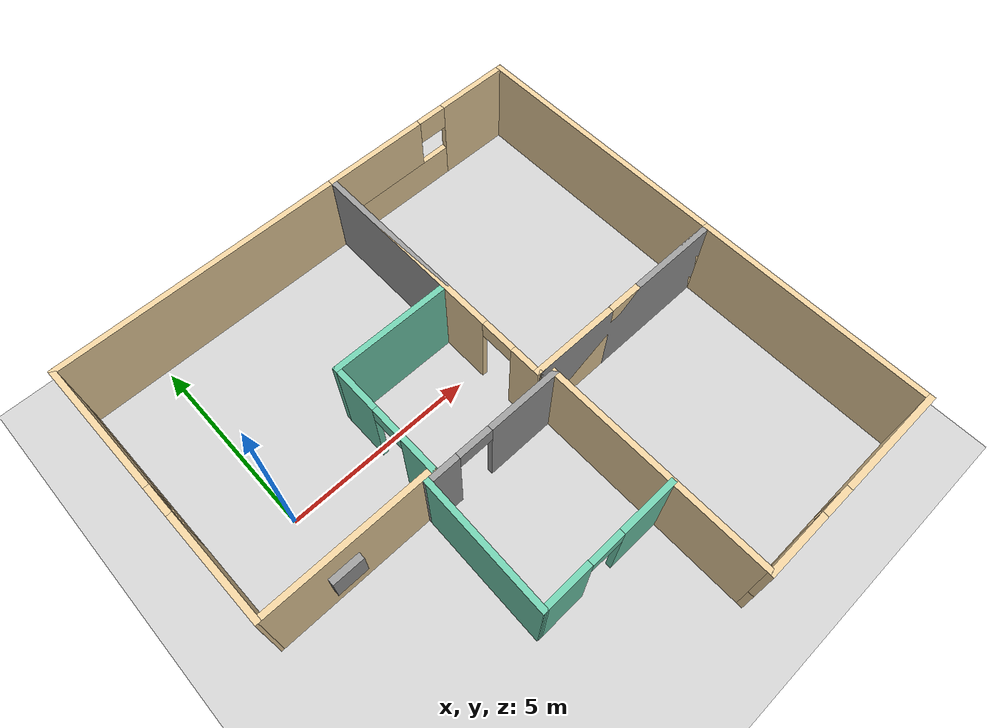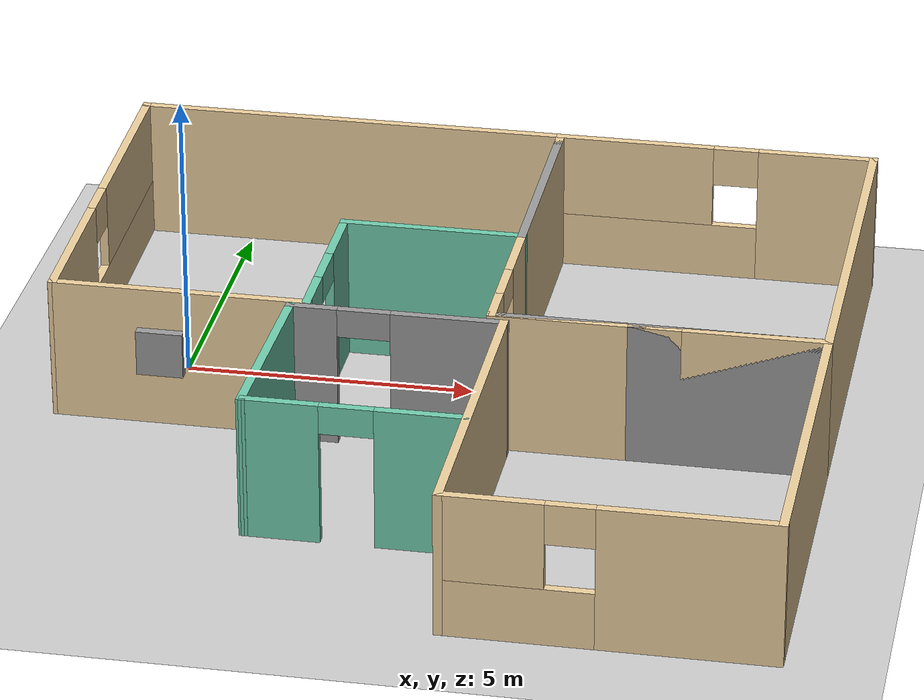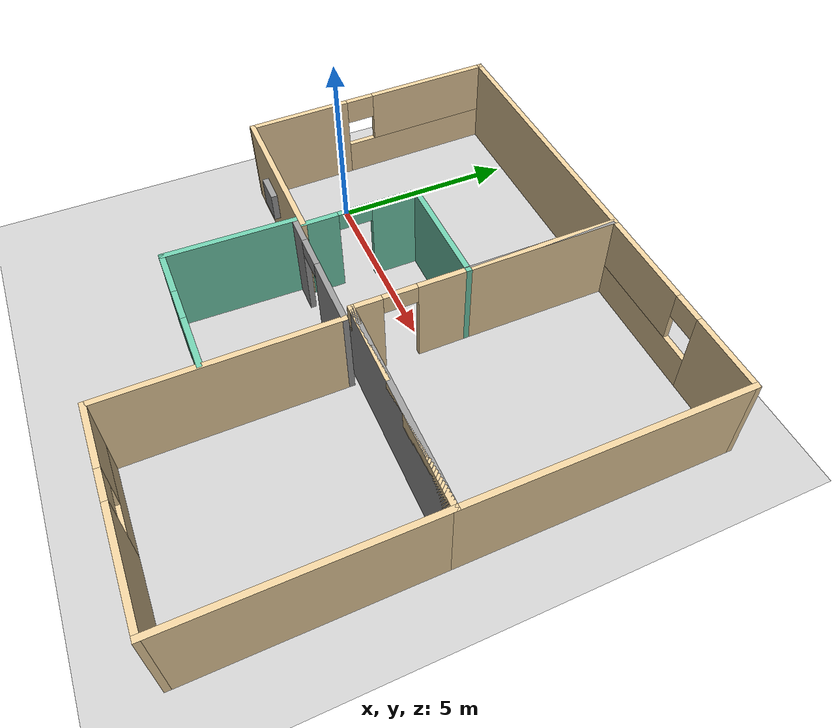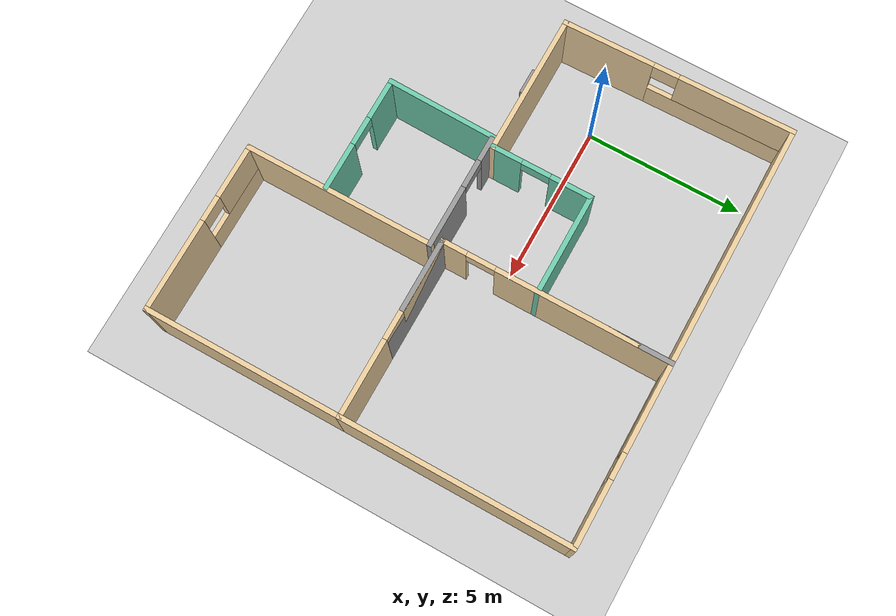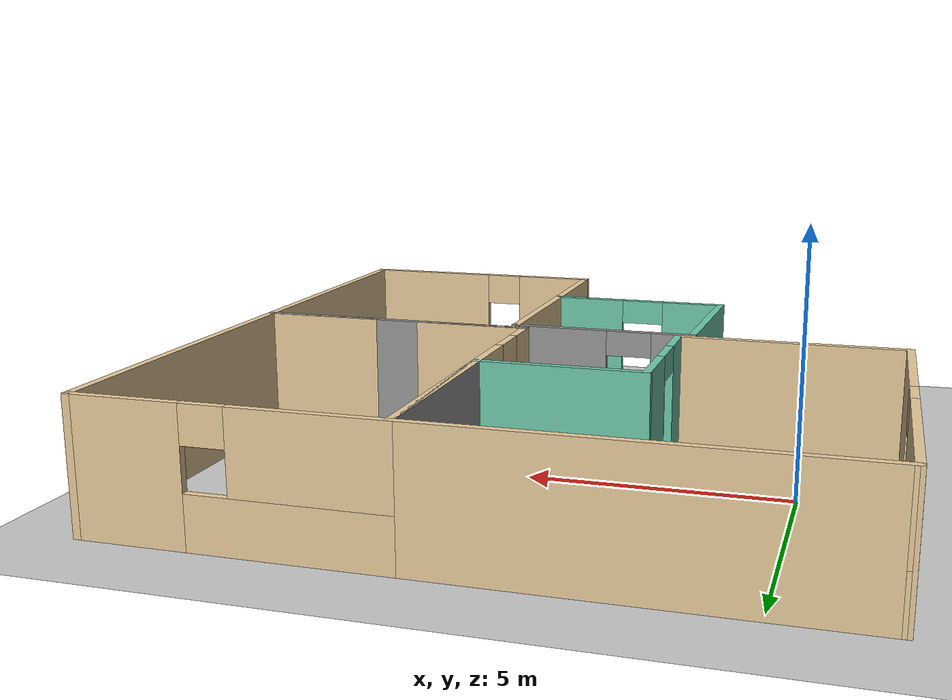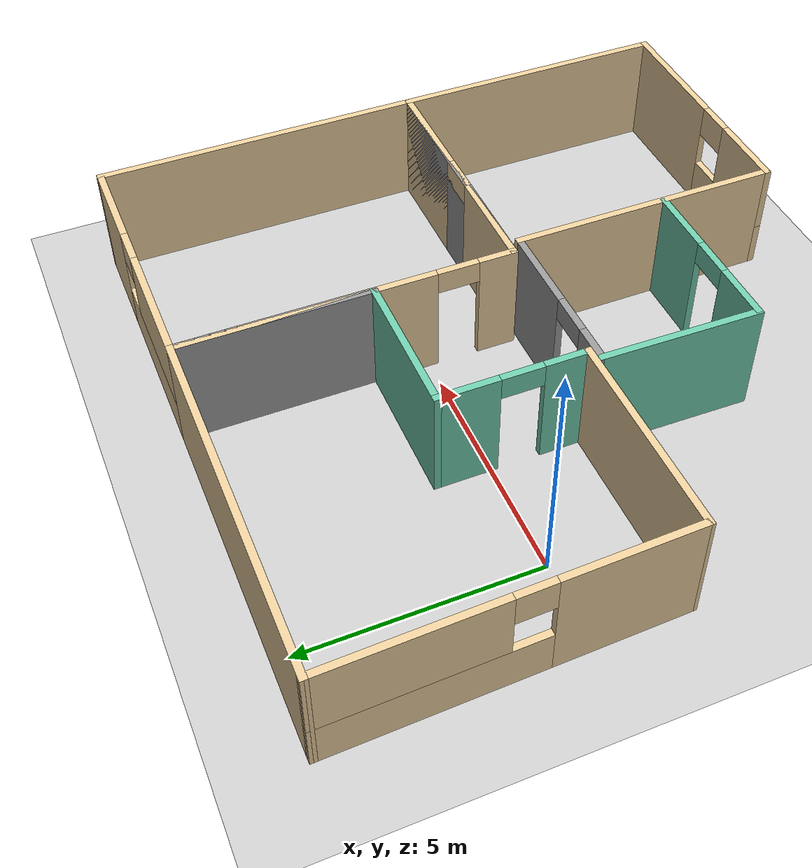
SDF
<sdf version="1.6">
 <world name="default">
  <light name="sun" type="directional">
   <pose>0 0 10 0 -0 0</pose>
   <diffuse>0.8 0.8 0.8 1</diffuse>
   <specular>0.2 0.2 0.2 1</specular>
   <attenuation>
    <range>1000</range>
    <constant>0.9</constant>
    <linear>0.01</linear>
    <quadratic>0.001</quadratic>
   </attenuation>
   <direction>-0.5 0.1 -0.9</direction>
  </light>
  <model name="ground_plane">
   <static>1</static>
   <link name="link">
    <collision name="collision">
     <geometry><plane><normal>0 0 1</normal><size>100 100</size></plane></geometry>
     <surface>
      <contact><collide_bitmask>65535</collide_bitmask></contact>
      <friction><ode><mu>100</mu><mu2>50</mu2></ode></friction>
     </surface>
    </collision>
    <visual name="visual">
     <cast_shadows>0</cast_shadows>
     <geometry><plane><normal>0 0 1</normal><size>100 100</size></plane></geometry>
     <material>
      <script><uri>file://media/materials/scripts/gazebo.material</uri><name>Gazebo/Grey</name></script>
     </material>
    </visual>
   </link>
  </model>
  <gravity>0 0 -9.8</gravity>
  <magnetic_field>6e-06 2.3e-05 -4.2e-05</magnetic_field>
  <atmosphere type="adiabatic"/>
  <physics name="default_physics" default="0" type="ode">
   <max_step_size>0.001</max_step_size>
   <real_time_factor>1</real_time_factor>
   <real_time_update_rate>1000</real_time_update_rate>
  </physics>
  <scene><ambient>0.4 0.4 0.4 1</ambient><background>0.7 0.7 0.7 1</background><shadows>1</shadows></scene>
  <audio><device>default</device></audio>
  <spherical_coordinates>
   <surface_model>EARTH_WGS84</surface_model>
   <latitude_deg>0</latitude_deg>
   <longitude_deg>0</longitude_deg>
   <elevation>0</elevation>
   <heading_deg>0</heading_deg>
  </spherical_coordinates>
  <model name="Test_bed">
   <pose>4.64877 -1.35982 0 0 -0 0</pose>
   <link name="Wall_0">
    <collision name="Wall_0_Collision">
     <geometry><box><size>7.75 0.15 2.5</size></box></geometry>
     <pose>0 0 1.25 0 -0 0</pose>
    </collision>
    <visual name="Wall_0_Visual">
     <pose>0 0 1.25 0 -0 0</pose>
     <geometry><box><size>7.75 0.15 2.5</size></box></geometry>
     <material>
      <script><uri>file://media/materials/scripts/gazebo.material</uri><name>Gazebo/Grey</name></script>
      <ambient>0.921569 0.807843 0.615686 1</ambient>
     </material>
     <meta><layer>0</layer></meta>
    </visual>
    <pose>-2.79923 6.59923 0 0 -0 0</pose>
   </link>
   <link name="Wall_1">
    <collision name="Wall_1_Collision">
     <geometry><box><size>4.25 0.15 2.5</size></box></geometry>
     <pose>0 0 1.25 0 -0 0</pose>
    </collision>
    <visual name="Wall_1_Visual">
     <pose>0 0 1.25 0 -0 0</pose>
     <geometry><box><size>4.25 0.15 2.5</size></box></geometry>
     <material>
      <script><uri>file://media/materials/scripts/gazebo.material</uri><name>Gazebo/Grey</name></script>
      <ambient>1 1 1 1</ambient>
     </material>
     <meta><layer>0</layer></meta>
    </visual>
    <pose>1.00077 4.54923 0 0 -0 -1.5708</pose>
   </link>
   <link name="Wall_10">
    <pose>3.80077 6.59923 0 0 -0 3.14159</pose>
    <visual name="Wall_10_Visual_0">
     <pose>-1.81772 0 1.25 0 -0 0</pose>
     <geometry><box><size>2.11457 0.15 2.5</size></box></geometry>
     <material>
      <script><uri>file://media/materials/scripts/gazebo.material</uri><name>Gazebo/Grey</name></script>
      <ambient>0.921569 0.807843 0.615686 1</ambient>
     </material>
     <meta><layer>0</layer></meta>
    </visual>
    <collision name="Wall_10_Collision_0">
     <geometry><box><size>2.11457 0.15 2.5</size></box></geometry>
     <pose>-1.81772 0 1.25 0 -0 0</pose>
    </collision>
    <visual name="Wall_10_Visual_1">
     <pose>1.05728 0 0.5 0 -0 0</pose>
     <geometry><box><size>3.63543 0.15 1</size></box></geometry>
     <material>
      <script><uri>file://media/materials/scripts/gazebo.material</uri><name>Gazebo/Grey</name></script>
      <ambient>0.921569 0.807843 0.615686 1</ambient>
     </material>
     <meta><layer>0</layer></meta>
    </visual>
    <collision name="Wall_10_Collision_1">
     <geometry><box><size>3.63543 0.15 1</size></box></geometry>
     <pose>1.05728 0 0.5 0 -0 0</pose>
    </collision>
    <visual name="Wall_10_Visual_2">
     <pose>1.45728 0 1.75 0 -0 0</pose>
     <geometry><box><size>2.83543 0.15 1.5</size></box></geometry>
     <material>
      <script><uri>file://media/materials/scripts/gazebo.material</uri><name>Gazebo/Grey</name></script>
      <ambient>0.921569 0.807843 0.615686 1</ambient>
     </material>
     <meta><layer>0</layer></meta>
    </visual>
    <collision name="Wall_10_Collision_2">
     <geometry><box><size>2.83543 0.15 1.5</size></box></geometry>
     <pose>1.45728 0 1.75 0 -0 0</pose>
    </collision>
    <visual name="Wall_10_Visual_3">
     <pose>-0.360434 0 2.15 0 -0 0</pose>
     <geometry><box><size>0.8 0.15 0.7</size></box></geometry>
     <material>
      <script><uri>file://media/materials/scripts/gazebo.material</uri><name>Gazebo/Grey</name></script>
      <ambient>0.921569 0.807843 0.615686 1</ambient>
     </material>
     <meta><layer>0</layer></meta>
    </visual>
    <collision name="Wall_10_Collision_3">
     <geometry><box><size>0.8 0.15 0.7</size></box></geometry>
     <pose>-0.360434 0 2.15 0 -0 0</pose>
    </collision>
   </link>
   <link name="Wall_12">
    <pose>3.80077 -0.500773 0 0 -0 0</pose>
    <visual name="Wall_12_Visual_0">
     <pose>-1.69683 0 1.25 0 -0 0</pose>
     <geometry><box><size>2.35634 0.15 2.5</size></box></geometry>
     <material>
      <script><uri>file://media/materials/scripts/gazebo.material</uri><name>Gazebo/Grey</name></script>
      <ambient>0.921569 0.807843 0.615686 1</ambient>
     </material>
     <meta><layer>0</layer></meta>
    </visual>
    <collision name="Wall_12_Collision_0">
     <geometry><box><size>2.35634 0.15 2.5</size></box></geometry>
     <pose>-1.69683 0 1.25 0 -0 0</pose>
    </collision>
    <visual name="Wall_12_Visual_1">
     <pose>1.62817 0 1.25 0 -0 0</pose>
     <geometry><box><size>2.49366 0.15 2.5</size></box></geometry>
     <material>
      <script><uri>file://media/materials/scripts/gazebo.material</uri><name>Gazebo/Grey</name></script>
      <ambient>0.921569 0.807843 0.615686 1</ambient>
     </material>
     <meta><layer>0</layer></meta>
    </visual>
    <collision name="Wall_12_Collision_1">
     <geometry><box><size>2.49366 0.15 2.5</size></box></geometry>
     <pose>1.62817 0 1.25 0 -0 0</pose>
    </collision>
    <visual name="Wall_12_Visual_2">
     <pose>-0.068656 0 2.25 0 -0 0</pose>
     <geometry><box><size>0.9 0.15 0.5</size></box></geometry>
     <material>
      <script><uri>file://media/materials/scripts/gazebo.material</uri><name>Gazebo/Grey</name></script>
      <ambient>0.921569 0.807843 0.615686 1</ambient>
     </material>
     <meta><layer>0</layer></meta>
    </visual>
    <collision name="Wall_12_Collision_2">
     <geometry><box><size>0.9 0.15 0.5</size></box></geometry>
     <pose>-0.068656 0 2.25 0 -0 0</pose>
    </collision>
   </link>
   <link name="Wall_13">
    <collision name="Wall_13_Collision">
     <geometry><box><size>6.25 0.15 2.5</size></box></geometry>
     <pose>0 0 1.25 0 -0 0</pose>
    </collision>
    <visual name="Wall_13_Visual">
     <pose>0 0 1.25 0 -0 0</pose>
     <geometry><box><size>6.25 0.15 2.5</size></box></geometry>
     <material>
      <script><uri>file://media/materials/scripts/gazebo.material</uri><name>Gazebo/Grey</name></script>
      <ambient>0.921569 0.807843 0.615686 1</ambient>
     </material>
     <meta><layer>0</layer></meta>
    </visual>
    <pose>6.60077 -3.55077 0 0 -0 -1.5708</pose>
   </link>
   <link name="Wall_14">
    <pose>3.92577 -6.60077 0 0 -0 3.14159</pose>
    <visual name="Wall_14_Visual_0">
     <pose>-1.27217 0 1.25 0 -0 0</pose>
     <geometry><box><size>2.95567 0.15 2.5</size></box></geometry>
     <material>
      <script><uri>file://media/materials/scripts/gazebo.material</uri><name>Gazebo/Grey</name></script>
      <ambient>0.921569 0.807843 0.615686 1</ambient>
     </material>
     <meta><layer>0</layer></meta>
    </visual>
    <collision name="Wall_14_Collision_0">
     <geometry><box><size>2.95567 0.15 2.5</size></box></geometry>
     <pose>-1.27217 0 1.25 0 -0 0</pose>
    </collision>
    <visual name="Wall_14_Visual_1">
     <pose>1.47783 0 0.5 0 -0 0</pose>
     <geometry><box><size>2.54433 0.15 1</size></box></geometry>
     <material>
      <script><uri>file://media/materials/scripts/gazebo.material</uri><name>Gazebo/Grey</name></script>
      <ambient>0.921569 0.807843 0.615686 1</ambient>
     </material>
     <meta><layer>0</layer></meta>
    </visual>
    <collision name="Wall_14_Collision_1">
     <geometry><box><size>2.54433 0.15 1</size></box></geometry>
     <pose>1.47783 0 0.5 0 -0 0</pose>
    </collision>
    <visual name="Wall_14_Visual_2">
     <pose>1.87783 0 1.75 0 -0 0</pose>
     <geometry><box><size>1.74433 0.15 1.5</size></box></geometry>
     <material>
      <script><uri>file://media/materials/scripts/gazebo.material</uri><name>Gazebo/Grey</name></script>
      <ambient>0.921569 0.807843 0.615686 1</ambient>
     </material>
     <meta><layer>0</layer></meta>
    </visual>
    <collision name="Wall_14_Collision_2">
     <geometry><box><size>1.74433 0.15 1.5</size></box></geometry>
     <pose>1.87783 0 1.75 0 -0 0</pose>
    </collision>
    <visual name="Wall_14_Visual_3">
     <pose>0.605666 0 2.15 0 -0 0</pose>
     <geometry><box><size>0.8 0.15 0.7</size></box></geometry>
     <material>
      <script><uri>file://media/materials/scripts/gazebo.material</uri><name>Gazebo/Grey</name></script>
      <ambient>0.921569 0.807843 0.615686 1</ambient>
     </material>
     <meta><layer>0</layer></meta>
    </visual>
    <collision name="Wall_14_Collision_3">
     <geometry><box><size>0.8 0.15 0.7</size></box></geometry>
     <pose>0.605666 0 2.15 0 -0 0</pose>
    </collision>
   </link>
   <link name="Wall_15">
    <collision name="Wall_15_Collision">
     <geometry><box><size>6 0.15 2.5</size></box></geometry>
     <pose>0 0 1.25 0 -0 0</pose>
    </collision>
    <visual name="Wall_15_Visual">
     <pose>0 0 1.25 0 -0 0</pose>
     <geometry><box><size>6 0.15 2.5</size></box></geometry>
     <material>
      <script><uri>file://media/materials/scripts/gazebo.material</uri><name>Gazebo/Grey</name></script>
      <ambient>0.921569 0.807843 0.615686 1</ambient>
     </material>
     <meta><layer>0</layer></meta>
    </visual>
    <pose>1.25077 -3.67577 0 0 -0 1.5708</pose>
   </link>
   <link name="Wall_16">
    <pose>-0.549227 -0.750773 0 0 -0 3.14159</pose>
    <visual name="Wall_16_Visual_0">
     <pose>-0.889544 0 1.25 0 -0 0</pose>
     <geometry><box><size>1.97091 0.15 2.5</size></box></geometry>
     <material>
      <script><uri>file://media/materials/scripts/gazebo.material</uri><name>Gazebo/Grey</name></script>
      <ambient>1 1 1 1</ambient>
     </material>
     <meta><layer>0</layer></meta>
    </visual>
    <collision name="Wall_16_Collision_0">
     <geometry><box><size>1.97091 0.15 2.5</size></box></geometry>
     <pose>-0.889544 0 1.25 0 -0 0</pose>
    </collision>
    <visual name="Wall_16_Visual_1">
     <pose>1.43546 0 1.25 0 -0 0</pose>
     <geometry><box><size>0.879087 0.15 2.5</size></box></geometry>
     <material>
      <script><uri>file://media/materials/scripts/gazebo.material</uri><name>Gazebo/Grey</name></script>
      <ambient>1 1 1 1</ambient>
     </material>
     <meta><layer>0</layer></meta>
    </visual>
    <collision name="Wall_16_Collision_1">
     <geometry><box><size>0.879087 0.15 2.5</size></box></geometry>
     <pose>1.43546 0 1.25 0 -0 0</pose>
    </collision>
    <visual name="Wall_16_Visual_2">
     <pose>0.545913 0 2.25 0 -0 0</pose>
     <geometry><box><size>0.9 0.15 0.5</size></box></geometry>
     <material>
      <script><uri>file://media/materials/scripts/gazebo.material</uri><name>Gazebo/Grey</name></script>
      <ambient>1 1 1 1</ambient>
     </material>
     <meta><layer>0</layer></meta>
    </visual>
    <collision name="Wall_16_Collision_2">
     <geometry><box><size>0.9 0.15 0.5</size></box></geometry>
     <pose>0.545913 0 2.25 0 -0 0</pose>
    </collision>
   </link>
   <link name="Wall_17">
    <collision name="Wall_17_Collision">
     <geometry><box><size>3.5 0.15 2.5</size></box></geometry>
     <pose>0 0 1.25 0 -0 0</pose>
    </collision>
    <visual name="Wall_17_Visual">
     <pose>0 0 1.25 0 -0 0</pose>
     <geometry><box><size>3.5 0.15 2.5</size></box></geometry>
     <material>
      <script><uri>file://media/materials/scripts/gazebo.material</uri><name>Gazebo/Grey</name></script>
      <ambient>0.435294 0.796078 0.67451 1</ambient>
     </material>
     <meta><layer>0</layer></meta>
    </visual>
    <pose>-2.38469 -2.42577 0 0 -0 -1.59197</pose>
   </link>
   <link name="Wall_2">
    <collision name="Wall_2_Collision">
     <geometry><box><size>3.25 0.15 2.5</size></box></geometry>
     <pose>0 0 1.25 0 -0 0</pose>
    </collision>
    <visual name="Wall_2_Visual">
     <pose>0 0 1.25 0 -0 0</pose>
     <geometry><box><size>3.25 0.15 2.5</size></box></geometry>
     <material>
      <script><uri>file://media/materials/scripts/gazebo.material</uri><name>Gazebo/Grey</name></script>
      <ambient>0.435294 0.796078 0.67451 1</ambient>
     </material>
     <meta><layer>0</layer></meta>
    </visual>
    <pose>-0.549227 2.49923 0 0 -0 3.14159</pose>
   </link>
   <link name="Wall_20">
    <pose>-0.584694 -4.10077 0 0 -0 0</pose>
    <visual name="Wall_20_Visual_0">
     <pose>-1.22091 0 1.25 0 -0 0</pose>
     <geometry><box><size>1.30818 0.15 2.5</size></box></geometry>
     <material>
      <script><uri>file://media/materials/scripts/gazebo.material</uri><name>Gazebo/Grey</name></script>
      <ambient>0.435294 0.796078 0.67451 1</ambient>
     </material>
     <meta><layer>0</layer></meta>
    </visual>
    <collision name="Wall_20_Collision_0">
     <geometry><box><size>1.30818 0.15 2.5</size></box></geometry>
     <pose>-1.22091 0 1.25 0 -0 0</pose>
    </collision>
    <visual name="Wall_20_Visual_1">
     <pose>1.10409 0 1.25 0 -0 0</pose>
     <geometry><box><size>1.54182 0.15 2.5</size></box></geometry>
     <material>
      <script><uri>file://media/materials/scripts/gazebo.material</uri><name>Gazebo/Grey</name></script>
      <ambient>0.435294 0.796078 0.67451 1</ambient>
     </material>
     <meta><layer>0</layer></meta>
    </visual>
    <collision name="Wall_20_Collision_1">
     <geometry><box><size>1.54182 0.15 2.5</size></box></geometry>
     <pose>1.10409 0 1.25 0 -0 0</pose>
    </collision>
    <visual name="Wall_20_Visual_2">
     <pose>-0.116823 0 2.25 0 -0 0</pose>
     <geometry><box><size>0.9 0.15 0.5</size></box></geometry>
     <material>
      <script><uri>file://media/materials/scripts/gazebo.material</uri><name>Gazebo/Grey</name></script>
      <ambient>0.435294 0.796078 0.67451 1</ambient>
     </material>
     <meta><layer>0</layer></meta>
    </visual>
    <collision name="Wall_20_Collision_2">
     <geometry><box><size>0.9 0.15 0.5</size></box></geometry>
     <pose>-0.116823 0 2.25 0 -0 0</pose>
    </collision>
   </link>
   <link name="Wall_3">
    <pose>-2.09923 0.949227 0 0 -0 -1.5708</pose>
    <visual name="Wall_3_Visual_0">
     <pose>-0.950645 0 1.25 0 -0 0</pose>
     <geometry><box><size>1.34871 0.15 2.5</size></box></geometry>
     <material>
      <script><uri>file://media/materials/scripts/gazebo.material</uri><name>Gazebo/Grey</name></script>
      <ambient>0.435294 0.796078 0.67451 1</ambient>
     </material>
     <meta><layer>0</layer></meta>
    </visual>
    <collision name="Wall_3_Collision_0">
     <geometry><box><size>1.34871 0.15 2.5</size></box></geometry>
     <pose>-0.950645 0 1.25 0 -0 0</pose>
    </collision>
    <visual name="Wall_3_Visual_1">
     <pose>1.12435 0 1.25 0 -0 0</pose>
     <geometry><box><size>1.00129 0.15 2.5</size></box></geometry>
     <material>
      <script><uri>file://media/materials/scripts/gazebo.material</uri><name>Gazebo/Grey</name></script>
      <ambient>0.435294 0.796078 0.67451 1</ambient>
     </material>
     <meta><layer>0</layer></meta>
    </visual>
    <collision name="Wall_3_Collision_1">
     <geometry><box><size>1.00129 0.15 2.5</size></box></geometry>
     <pose>1.12435 0 1.25 0 -0 0</pose>
    </collision>
    <visual name="Wall_3_Visual_2">
     <pose>0.17371 0 2.25 0 -0 0</pose>
     <geometry><box><size>0.9 0.15 0.5</size></box></geometry>
     <material>
      <script><uri>file://media/materials/scripts/gazebo.material</uri><name>Gazebo/Grey</name></script>
      <ambient>0.435294 0.796078 0.67451 1</ambient>
     </material>
     <meta><layer>0</layer></meta>
    </visual>
    <collision name="Wall_3_Collision_2">
     <geometry><box><size>0.9 0.15 0.5</size></box></geometry>
     <pose>0.17371 0 2.25 0 -0 0</pose>
    </collision>
   </link>
   <link name="Wall_4">
    <collision name="Wall_4_Collision">
     <geometry><box><size>4.5 0.15 2.5</size></box></geometry>
     <pose>0 0 1.25 0 -0 0</pose>
    </collision>
    <visual name="Wall_4_Visual">
     <pose>0 0 1.25 0 -0 0</pose>
     <geometry><box><size>4.5 0.15 2.5</size></box></geometry>
     <material>
      <script><uri>file://media/materials/scripts/gazebo.material</uri><name>Gazebo/Grey</name></script>
      <ambient>0.921569 0.807843 0.615686 1</ambient>
     </material>
     <meta><layer>0</layer></meta>
    </visual>
    <pose>-4.27423 -0.600773 0 0 -0 3.14159</pose>
   </link>
   <link name="Wall_5">
    <pose>-6.52423 2.99923 0 0 -0 1.59163</pose>
    <visual name="Wall_5_Visual_0">
     <pose>-2.22349 0 1.25 0 -0 0</pose>
     <geometry><box><size>2.90459 0.15 2.5</size></box></geometry>
     <material>
      <script><uri>file://media/materials/scripts/gazebo.material</uri><name>Gazebo/Grey</name></script>
      <ambient>0.921569 0.807843 0.615686 1</ambient>
     </material>
     <meta><layer>0</layer></meta>
    </visual>
    <collision name="Wall_5_Collision_0">
     <geometry><box><size>2.90459 0.15 2.5</size></box></geometry>
     <pose>-2.22349 0 1.25 0 -0 0</pose>
    </collision>
    <visual name="Wall_5_Visual_1">
     <pose>1.45229 0 0.5 0 -0 0</pose>
     <geometry><box><size>4.44697 0.15 1</size></box></geometry>
     <material>
      <script><uri>file://media/materials/scripts/gazebo.material</uri><name>Gazebo/Grey</name></script>
      <ambient>0.921569 0.807843 0.615686 1</ambient>
     </material>
     <meta><layer>0</layer></meta>
    </visual>
    <collision name="Wall_5_Collision_1">
     <geometry><box><size>4.44697 0.15 1</size></box></geometry>
     <pose>1.45229 0 0.5 0 -0 0</pose>
    </collision>
    <visual name="Wall_5_Visual_2">
     <pose>1.85229 0 1.75 0 -0 0</pose>
     <geometry><box><size>3.64697 0.15 1.5</size></box></geometry>
     <material>
      <script><uri>file://media/materials/scripts/gazebo.material</uri><name>Gazebo/Grey</name></script>
      <ambient>0.921569 0.807843 0.615686 1</ambient>
     </material>
     <meta><layer>0</layer></meta>
    </visual>
    <collision name="Wall_5_Collision_2">
     <geometry><box><size>3.64697 0.15 1.5</size></box></geometry>
     <pose>1.85229 0 1.75 0 -0 0</pose>
    </collision>
    <visual name="Wall_5_Visual_3">
     <pose>-0.371193 0 2.15 0 -0 0</pose>
     <geometry><box><size>0.8 0.15 0.7</size></box></geometry>
     <material>
      <script><uri>file://media/materials/scripts/gazebo.material</uri><name>Gazebo/Grey</name></script>
      <ambient>0.921569 0.807843 0.615686 1</ambient>
     </material>
     <meta><layer>0</layer></meta>
    </visual>
    <collision name="Wall_5_Collision_3">
     <geometry><box><size>0.8 0.15 0.7</size></box></geometry>
     <pose>-0.371193 0 2.15 0 -0 0</pose>
    </collision>
   </link>
   <link name="Wall_7">
    <pose>1.00077 3.04923 0 0 -0 -1.5708</pose>
    <visual name="Wall_7_Visual_0">
     <pose>-0.873827 0 1.25 0 -0 0</pose>
     <geometry><box><size>5.50235 0.15 2.5</size></box></geometry>
     <material>
      <script><uri>file://media/materials/scripts/gazebo.material</uri><name>Gazebo/Grey</name></script>
      <ambient>0.921569 0.807843 0.615686 1</ambient>
     </material>
     <meta><layer>0</layer></meta>
    </visual>
    <collision name="Wall_7_Collision_0">
     <geometry><box><size>5.50235 0.15 2.5</size></box></geometry>
     <pose>-0.873827 0 1.25 0 -0 0</pose>
    </collision>
    <visual name="Wall_7_Visual_1">
     <pose>3.20117 0 1.25 0 -0 0</pose>
     <geometry><box><size>0.847653 0.15 2.5</size></box></geometry>
     <material>
      <script><uri>file://media/materials/scripts/gazebo.material</uri><name>Gazebo/Grey</name></script>
      <ambient>0.921569 0.807843 0.615686 1</ambient>
     </material>
     <meta><layer>0</layer></meta>
    </visual>
    <collision name="Wall_7_Collision_1">
     <geometry><box><size>0.847653 0.15 2.5</size></box></geometry>
     <pose>3.20117 0 1.25 0 -0 0</pose>
    </collision>
    <visual name="Wall_7_Visual_2">
     <pose>2.32735 0 2.25 0 -0 0</pose>
     <geometry><box><size>0.9 0.15 0.5</size></box></geometry>
     <material>
      <script><uri>file://media/materials/scripts/gazebo.material</uri><name>Gazebo/Grey</name></script>
      <ambient>0.921569 0.807843 0.615686 1</ambient>
     </material>
     <meta><layer>0</layer></meta>
    </visual>
    <collision name="Wall_7_Collision_2">
     <geometry><box><size>0.9 0.15 0.5</size></box></geometry>
     <pose>2.32735 0 2.25 0 -0 0</pose>
    </collision>
   </link>
   <link name="Wall_8">
    <collision name="Wall_8_Collision">
     <geometry><box><size>5.75 0.15 2.5</size></box></geometry>
     <pose>0 0 1.25 0 -0 0</pose>
    </collision>
    <visual name="Wall_8_Visual">
     <pose>0 0 1.25 0 -0 0</pose>
     <geometry><box><size>5.75 0.15 2.5</size></box></geometry>
     <material>
      <script><uri>file://media/materials/scripts/gazebo.material</uri><name>Gazebo/Grey</name></script>
      <ambient>1 1 1 1</ambient>
     </material>
     <meta><layer>0</layer></meta>
    </visual>
    <pose>3.80077 -0.500773 0 0 -0 0</pose>
   </link>
   <link name="Wall_9">
    <collision name="Wall_9_Collision">
     <geometry><box><size>7.25 0.15 2.5</size></box></geometry>
     <pose>0 0 1.25 0 -0 0</pose>
    </collision>
    <visual name="Wall_9_Visual">
     <pose>0 0 1.25 0 -0 0</pose>
     <geometry><box><size>7.25 0.15 2.5</size></box></geometry>
     <material>
      <script><uri>file://media/materials/scripts/gazebo.material</uri><name>Gazebo/Grey</name></script>
      <ambient>0.921569 0.807843 0.615686 1</ambient>
     </material>
     <meta><layer>0</layer></meta>
    </visual>
    <pose>6.60077 3.04923 0 0 -0 1.5708</pose>
   </link>
   <link name="Window_1">
    <collision name="Window_1_Collision">
     <geometry><box><size>0.8 0.17 0.8</size></box></geometry>
     <pose>0 0 0.4 0 -0 0</pose>
    </collision>
    <visual name="Window_1_Visual">
     <pose>0 0 0.4 0 -0 0</pose>
     <geometry><box><size>0.8 0.17 0.8</size></box></geometry>
     <material>
      <script><uri>file://media/materials/scripts/gazebo.material</uri><name>Gazebo/Grey</name></script>
     </material>
    </visual>
    <pose>-4.58546 -0.78648 1 0 -0 0</pose>
   </link>
   <static>1</static>
  </model>
 </world>
</sdf>
